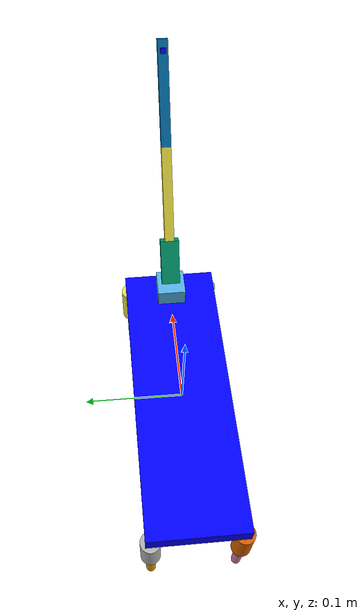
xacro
<?xml version="1.0"?>
<robot name="quadruped_leg"  xmlns:xacro="http://www.ros.org/wiki/xacro">

  <xacro:include filename="$(find spotmini_description)/urdf/links_joints.xacro"/>

  <material name="red">
    <color rgba="1.0 0.0 0.0 1.0"/>
  </material>
 <material name="green">
    <color rgba="0.0 1.0 0.0 1.0"/>
</material>
<material name="blue">
    <color rgba="0.0 0.0 1.0 1.0"/>
</material>
<material name="white">
    <color rgba="1 1.0 1.0 1.0"/>
</material>

  <link name="base_link">
    <visual>
      <geometry>
        <box size="0.3 0.1 0.02"/>
        <origin xyz = "0 0 0.01" rpy =" 0 0 1.0"/>
      </geometry>
      <material name="blue"/>

    </visual>

    <inertial>
         <origin xyz="0 0 0.01" rpy="0 0 1.0"/>
         <mass value="1"/>
         <inertia ixx="0.11"  ixy="0"  ixz="0.0" iyy= "0.04" iyz="0" izz="0.02" />
       </inertial>
     <collision>
        <origin xyz = "0 0 1.50" rpy="0 0 0"/>
        <geometry>
          <box size="0.3 0.1 0.02"/>
        </geometry>
    </collision>
  </link>

  <link name="thigh_link_front">
    <visual>
      <geometry>
        <cylinder length="0.045" radius="0.01"/>
      </geometry>
      <origin rpy="0 0 0" xyz="0 0 -0.0225"/>
    </visual>

    <inertial>
        <origin rpy="0 0 0" xyz="0 0 -0.0225"/>
        <mass value="1"/>
         <inertia ixx="0.11"  ixy="0"  ixz="0.0" iyy= "0.04" iyz="0" izz="0.02" />
      </inertial>
     <collision>
        <origin rpy="0 0 0" xyz="0 0 -0.0225"/>
        <geometry>
          <cylinder length="0.045" radius="0.01"/>
        </geometry>
    </collision>
  </link>

  <joint name="elbow_joint_front" type="revolute">
    <axis xyz="0 1 0"/>
    <limit effort="10.0" lower="-0.39" upper="0.39" velocity="1.0"/>
    <parent link="base_link"/>
    <child link="thigh_link_front"/>
    <origin xyz="0.145 -0.045 -0.01"/>
  </joint>

  <link name="shank_link_front">
    <visual>
      <geometry>
        <cylinder length="0.05" radius="0.005"/>
      </geometry>
      <origin rpy="0 0 0" xyz="0 0 -0.025"/>
    </visual>

    <inertial>
        <origin rpy="0 0 0" xyz="0 0 -0.025"/>
        <mass value="1"/>
         <inertia ixx="0.11"  ixy="0"  ixz="0.0" iyy= "0.04" iyz="0" izz="0.02" />
      </inertial>
     <collision>
        <origin rpy="0 0 0" xyz="0 0 -0.025"/>
        <geometry>
          <cylinder length="0.05" radius="0.005"/>
        </geometry>
    </collision>
  </link>

  <joint name="wrist_joint_front" type="revolute">
    <axis xyz="0 1 0"/>
    <limit effort="10.0" lower="-0.39" upper="0.40" velocity="1.0"/>
    <parent link="thigh_link_front"/>
    <child link="shank_link_front"/>
    <origin xyz="0 0 -0.045"/>
  </joint>

  <link name="thigh_link_front1">
    <visual>
      <geometry>
        <cylinder length="0.045" radius="0.01"/>
      </geometry>
      <origin rpy="0 0 0" xyz="0 0 -0.0225"/>
    </visual>
    <inertial>
        <origin rpy="0 0 0" xyz="0 0 -0.0225"/>
        <mass value="1"/>
         <inertia ixx="0.11"  ixy="0"  ixz="0.0" iyy= "0.04" iyz="0" izz="0.02" />
      </inertial>
     <collision>
        <origin rpy="0 0 0" xyz="0 0 -0.0225"/>
        <geometry>
          <cylinder length="0.045" radius="0.01"/>
        </geometry>
    </collision>
  </link>

  <joint name="elbow_joint_front1" type="revolute">
    <axis xyz="0 1 0"/>
    <limit effort="10.0" lower="-1.57075" upper="1.57075" velocity="1.0"/>
    <parent link="base_link"/>
    <child link="thigh_link_front1"/>
     <origin xyz="0.145 0.045 -0.01"/>
  </joint>

  <link name="shank_link_front1">
    <visual>
      <geometry>
        <cylinder length="0.05" radius="0.005"/>
      </geometry>
      <origin rpy="0 0 0" xyz="0 0 -0.025"/>
    </visual>
    <inertial>
        <origin rpy="0 0 0" xyz="0 0 -0.025"/>
        <mass value="1"/>
         <inertia ixx="0.11"  ixy="0"  ixz="0.0" iyy= "0.04" iyz="0" izz="0.02" />
      </inertial>
     <collision>
        <origin rpy="0 0 0" xyz="0 0 -0.025"/>
        <geometry>
          <cylinder length="0.05" radius="0.005"/>
        </geometry>
    </collision>

  </link>

  <joint name="wrist_joint_front1" type="revolute">
    <axis xyz="0 1 0"/>
    <limit effort="1.0" lower="-0.39" upper="0.39" velocity="1"/>
    <parent link="thigh_link_front1"/>
    <child link="shank_link_front1"/>
    <origin xyz="0 0 -0.045"/>
  </joint>

  <link name="thigh_link_back">
    <visual>
      <geometry>
        <cylinder length="0.045" radius="0.01"/>
      </geometry>
      <origin rpy="0 0 0" xyz="0 0 -0.0225"/>
    </visual>
    <inertial>
        <origin rpy="0 0 0" xyz="0 0 -0.0225"/>
        <mass value="1"/>
         <inertia ixx="0.11"  ixy="0"  ixz="0.0" iyy= "0.04" iyz="0" izz="0.02" />
      </inertial>
     <collision>
        <origin rpy="0 0 0" xyz="0 0 -0.0225"/>
        <geometry>
          <cylinder length="0.045" radius="0.01"/>
        </geometry>
    </collision>

  </link>

  <joint name="elbow_joint_back" type="revolute">
    <axis xyz="0 1 0"/>
    <limit effort="10.0" lower="-0.39" upper="0.39"  velocity="1.0"/>
    <parent link="base_link"/>
    <child link="thigh_link_back"/>
    <origin xyz="-0.145 -0.045 -0.01"/>
  </joint>

  <link name="shank_link_back">
    <visual>
      <geometry>
        <cylinder length="0.05" radius="0.005"/>
      </geometry>
      <origin rpy="0 0 0" xyz="0 0 -0.025"/>
    </visual>

    <inertial>
        <origin rpy="0 0 0" xyz="0 0 -0.025"/>
        <mass value="1"/>
         <inertia ixx="0.11"  ixy="0"  ixz="0.0" iyy= "0.04" iyz="0" izz="0.02" />
      </inertial>
     <collision>
        <origin rpy="0 0 0" xyz="0 0 -0.025"/>
        <geometry>
          <cylinder length="0.05" radius="0.005"/>
        </geometry>
    </collision>

  </link>
  <joint name="wrist_joint_back" type="revolute">
    <axis xyz="0 1 0"/>
    <limit effort="10.0"  lower="-0.39" upper="0.39" velocity="1.0"/>
    <parent link="thigh_link_back"/>
    <child link="shank_link_back"/>
    <origin xyz="0 0 -0.045"/>
  </joint>

  <link name="thigh_link_back1">
    <visual>
      <geometry>
        <cylinder length="0.045" radius="0.01"/>
      </geometry>
      <origin rpy="0 0 0" xyz="0 0 -0.0225"/>
    </visual>

    <inertial>
        <origin rpy="0 0 0" xyz="0 0 -0.0225"/>
        <mass value="1"/>
         <inertia ixx="0.11"  ixy="0"  ixz="0.0" iyy= "0.04" iyz="0" izz="0.02" />
      </inertial>
     <collision>
        <origin rpy="0 0 0" xyz="0 0 -0.0225"/>
        <geometry>
          <cylinder length="0.045" radius="0.01"/>
        </geometry>
    </collision>

  </link>

  <joint name="elbow_joint_back1" type="revolute">
    <axis xyz="0 1 0"/>
    <limit effort="10.0" lower="-0.39" upper="0.39" velocity="1.0"/>
    <parent link="base_link"/>
    <child link="thigh_link_back1"/>
    <origin xyz="-0.145 0.045 -0.01"/>
  </joint>

  <link name="shank_link_back1">
    <visual>
      <geometry>
        <cylinder length="0.05" radius="0.005"/>
      </geometry>
      <origin rpy="0 0 0" xyz="0 0 -0.025"/>
    </visual>
    <inertial>
        <origin rpy="0 0 0" xyz="0 0 -0.025"/>
        <mass value="1"/>
         <inertia ixx="0.11"  ixy="0"  ixz="0.0" iyy= "0.04" iyz="0" izz="0.02" />
      </inertial>
     <collision>
        <origin rpy="0 0 0" xyz="0 0 -0.025"/>
        <geometry>
          <cylinder length="0.05" radius="0.005"/>
        </geometry>
    </collision>
  </link>

  <joint name="wrist_joint_back1" type="revolute">
    <axis xyz="0 1 0"/>
    <limit effort="10.0" lower="-0.39" upper="0.39" velocity="1.0"/>
    <parent link="thigh_link_back1"/>
    <child link="shank_link_back1"/>
    <origin xyz="0 0 -0.045"/>
  </joint>

  <link name="body1_link">
    <visual>
      <geometry>
        <box size="0.03 0.03 0.02"/>
      </geometry>
      <origin xyz="0 0 0.01" rpy="0 0 0"/>
    </visual>
       <inertial>
         <origin xyz="0 0 0.5" rpy="0 0 0"/>
         <mass value="1"/>
         <inertia ixx="0.01"  ixy="0"  ixz="0" iyy= "0.01" iyz="0" izz="0.01" />

       </inertial>
     <collision>
        <origin xyz="0 0 0" rpy="0 0 0"/>
        <geometry>
          <cylinder length="0.035" radius="0.005"/>
        </geometry>
      </collision>

  </link>

  <joint name="body1_joint" type="fixed">
    <parent link="base_link"/>
    <child  link="body1_link"/>
    <origin xyz = "0.125 0 0.01"/>
  </joint>

 <joint name="body2_joint" type="revolute">
    <parent link="body1_link"/>
    <child  link="body2_link"/>
    <origin xyz="0 0 0.02" rpy="0 0 1.57"/>
    <limit lower="0.32" upper="0.7" effort="10" velocity="1"/>
  </joint>

  <link name="body2_link">
    <visual>
      <geometry>
        <box size="0.02 0.01 0.05"/>
      </geometry>
      <origin xyz="0 0 0.025" rpy="0 0 0"/>
    </visual>
    <inertial>
        <origin xyz="0 0 0.025" rpy="0 0 0"/>
        <mass value="1"/>
         <inertia ixx="0.01"  ixy="0"  ixz="0" iyy= "0.01" iyz="0" izz="0.01" />
      </inertial>
     <collision>
        <origin xyz="0 0 0.025" rpy="0 0 0"/>
        <geometry>
          <box size="0.02 0.01 0.05"/>
        </geometry>
    </collision>

  </link>

   <joint name="body3_joint" type="revolute">
    <parent link="body2_link"/>
    <child  link="body3_link"/>
    <origin xyz="0 0 0.05" rpy="0 0 0"/>
    <limit lower="-1.5" upper="1.5" effort="10" velocity="1"/>
  </joint>
  <link name="body3_link">
    <visual>
      <geometry>
        <box size="0.01 0.01 0.1"/>
      </geometry>
      <origin xyz="0 0 0.05" rpy="0 0 0"/>
    </visual>

    <inertial>
        <origin xyz="0 0 0.05" rpy="0 0 0"/>
        <mass value="1"/>
         <inertia ixx="0.01"  ixy="0"  ixz="0" iyy= "0.01" iyz="0" izz="0.01" />
      </inertial>
     <collision>
        <origin xyz="0 0 0.05" rpy="0 0 0"/>
        <geometry>
          <box size="0.01 0.01 0.1"/>
        </geometry>
    </collision>

  </link>

   <joint name="body4_joint" type="revolute">
    <parent link="body3_link"/>
    <child  link="body4_link"/>
    <origin xyz="0 0 0.1" rpy="0 0 0"/>
    <limit lower="-0.39" upper="0.39" effort="10.0" velocity="1"/>
  </joint>

  <link name="body4_link">
    <visual>
      <geometry>
        <box size="0.01 0.01 0.1"/>
      </geometry>
      <origin xyz="0 0 0.05" rpy="0 0 0"/>
    </visual>
    <inertial>
        <origin xyz="0 0 0.05" rpy="0 0 0"/>
        <mass value="1"/>
         <inertia ixx="0.01"  ixy="0"  ixz="0" iyy= "0.01" iyz="0" izz="0.01" />

      </inertial>
     <collision>
        <origin xyz="0 0 0.05" rpy="0 0 0"/>
        <geometry>
          <box size="0.01 0.01 0.1"/>
        </geometry>
    </collision>
  </link>

        <joint name="imu_sensor_joint" type="fixed">
            <axis xyz="0 0 1"/>
            <origin xyz="0 0.0085 0.09" rpy="0 0 0"/>
            <parent link="body4_link"/>
            <child link="imu_sensor_link"/>
        </joint>

        <link name="imu_sensor_link">
            <collision>
                <origin xyz="0 0 0" rpy="0 0 0"/>
                <geometry>
                    <box size="0.005 0.005 0.005"/>
                </geometry>
            </collision>
            <visual>
                <origin xyz="0 0 0" rpy="0 0 0"/>
                <geometry>
                    <box size="0.005 0.005 0.005"/>
                </geometry>
                <material name="blue"/>
            </visual>
            <inertial>
                <mass value="0.001"/>
                <origin xyz="0 0 0" rpy="0 0 0"/>
                <inertia ixx="0.00000015" ixy="0" ixz="0" iyy="0.00000015" iyz="0" izz="0.00000015"/>
            </inertial>
        </link>

</robot>
